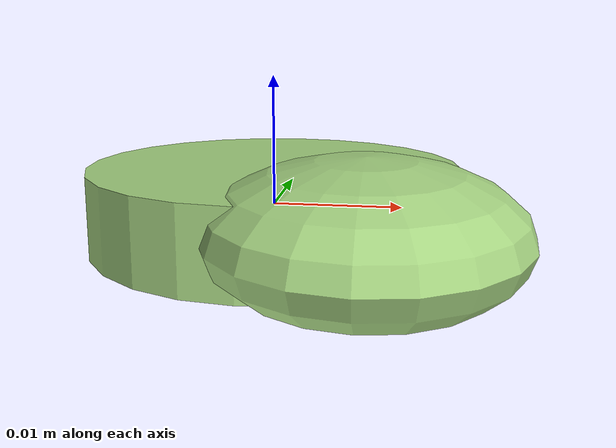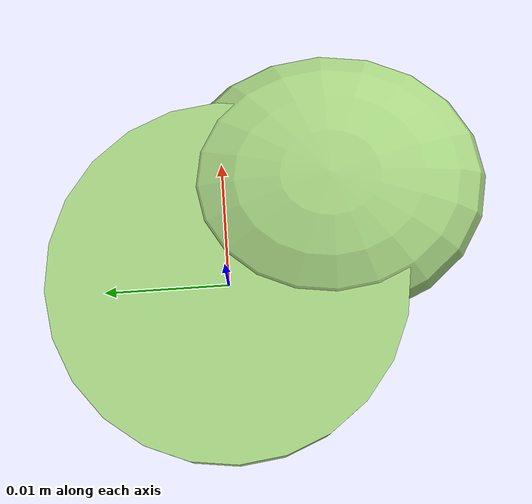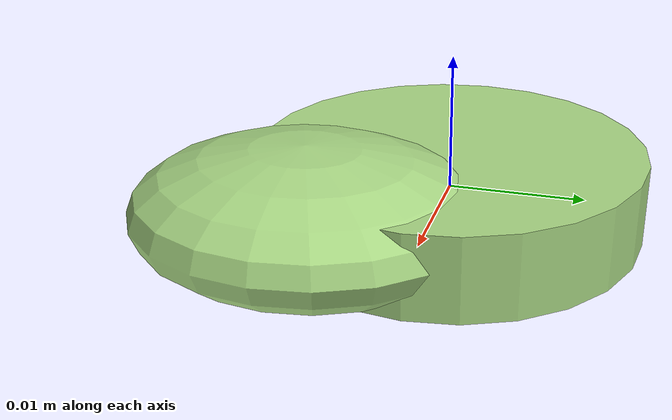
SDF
<?xml version="1.0" ?>
<!-- |    This document was autogenerated by xmacro from data/veggie_template/veggie_base.sdf.xacro  | -->
<!-- |    EDITING THIS FILE BY HAND IS NOT RECOMMENDED                                               | -->
<sdf version="1.8">
	<!-- Parameters -->
	<!-- Base -->
	<!-- Joint 0 -->
	<!-- Link 1 -->
	<!-- Joint 1 -->
	<!-- Link 2 -->
	<!-- Primitives -->
	<!-- All dimensions are half -->
	<!-- Object -->
	<model name="veggie">
		<!-- link0 -->
		<link name="link0">
			<inertial>
				<mass>0.004043956770274694</mass>
				<inertia>
					<ixx>2.2182524949471176e-07</ixx>
					<ixy>0</ixy>
					<ixz>0</ixz>
					<iyy>2.2182524949471176e-07</iyy>
					<iyz>0</iyz>
					<izz>4.1744993030716917e-07</izz>
				</inertia>
			</inertial>
			<visual name="link0_visual">
				<pose>0 0 0 0 0 0</pose>
				<geometry>
					<cylinder>
						<radius>0.014368583035622811</radius>
						<length>0.006234874726600599</length>
					</cylinder>
				</geometry>
				<material>
					<ambient>0.659 0.839 0.514 1</ambient>
					<diffuse>0.659 0.839 0.514 1</diffuse>
					<specular>0 0 0 0</specular>
					<emissive>0 0 0 1</emissive>
				</material>
			</visual>
			<collision name="link0_collision">
				<pose>0 0 0 0 0 0 </pose>
				<geometry>
					<cylinder>
						<radius>0.014368583035622811</radius>
						<length>0.006234874726600599</length>
					</cylinder>
				</geometry>
			</collision>
		</link>
		<!-- link1 -->
		<joint name="joint0" type="fixed">
			<pose relative_to="link0">0.0075842501684468145 -0.008559036953768952 0.00035119920577085056 0.0 0.0 0.0</pose>
			<parent>link0</parent>
			<child>link1</child>
		</joint>
		<link name="link1">
			<pose relative_to="joint0">0 0 0 0 0 0</pose>
			<inertial>
				<mass>0.002954450814324482</mass>
				<inertia>
					<ixx>1.127662985784443e-07</ixx>
					<ixy>0</ixy>
					<ixz>0</ixz>
					<iyy>8.616134893658702e-08</iyy>
					<iyz>0</iyz>
					<izz>1.696963766972225e-07</izz>
				</inertia>
			</inertial>
			<visual name="link1_visual">
				<pose>0 0 0 0 0 0</pose>
				<geometry>
					<ellipsoid>
						<radii>0.011003692100284797 0.012888228855080116 0.0049734238248964</radii>
					</ellipsoid>
				</geometry>
				<material>
					<ambient>0.659 0.839 0.514 1</ambient>
					<diffuse>0.659 0.839 0.514 1</diffuse>
					<specular>0 0 0 0</specular>
					<emissive>0 0 0 1</emissive>
				</material>
			</visual>
			<collision name="link1_collision">
				<pose>0 0 0 0 0 0 </pose>
				<geometry>
					<ellipsoid>
						<radii>0.011003692100284797 0.012888228855080116 0.0049734238248964</radii>
					</ellipsoid>
				</geometry>
			</collision>
		</link>
		<!-- link2 -->
	</model>
</sdf>
